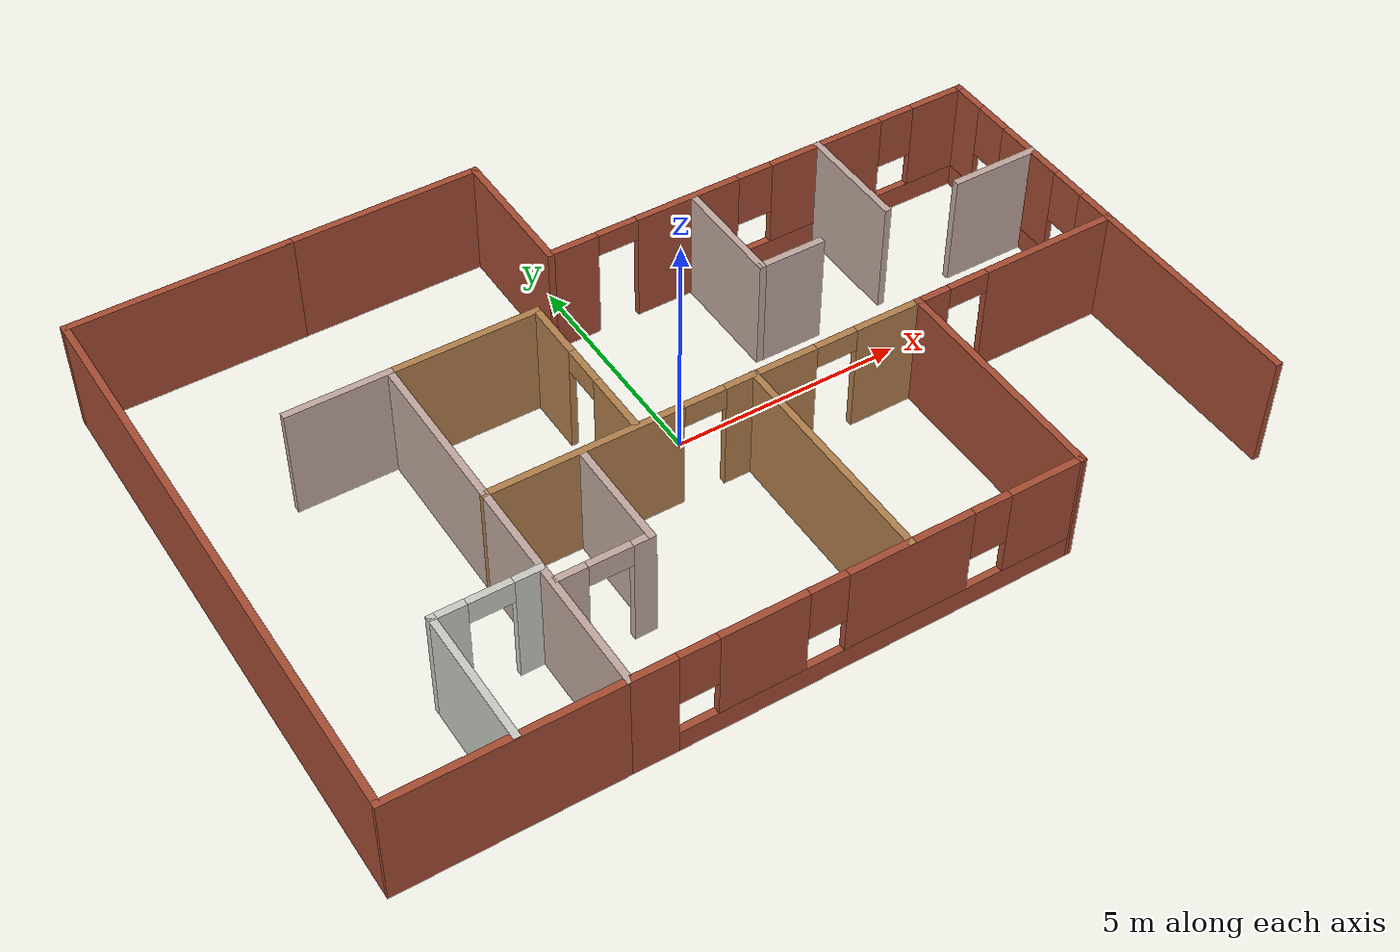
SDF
<?xml version='1.0'?>
<sdf version='1.7'>
  <model name='Building'>
    <pose>-0.132573 0.267464 0 0 -0 0</pose>
    <link name='Wall_12'>
      <collision name='Wall_12_Collision'>
        <geometry>
          <box>
            <size>4.26766 0.15 2.5</size>
          </box>
        </geometry>
        <pose>0 0 1.25 0 -0 0</pose>
      </collision>
      <visual name='Wall_12_Visual'>
        <pose>0 0 1.25 0 -0 0</pose>
        <geometry>
          <box>
            <size>4.26766 0.15 2.5</size>
          </box>
        </geometry>
        <material>
          <script>
            <uri>file://media/materials/scripts/gazebo.material</uri>
            <name>Gazebo/Bricks</name>
          </script>
          <ambient>1 1 1 1</ambient>
        </material>
        <meta>
          <layer>0</layer>
        </meta>
      </visual>
      <pose>-2.62625 6.34999 0 0 -0 3.14135</pose>
    </link>
    <link name='Wall_18'>
      <collision name='Wall_18_Collision'>
        <geometry>
          <box>
            <size>2.54909 0.15 2.5</size>
          </box>
        </geometry>
        <pose>0 0 1.25 0 -0 0</pose>
      </collision>
      <visual name='Wall_18_Visual'>
        <pose>0 0 1.25 0 -0 0</pose>
        <geometry>
          <box>
            <size>2.54909 0.15 2.5</size>
          </box>
        </geometry>
        <material>
          <script>
            <uri>file://media/materials/scripts/gazebo.material</uri>
            <name>Gazebo/Grey</name>
          </script>
          <ambient>0.760784 0.662745 0.627451 1</ambient>
        </material>
        <meta>
          <layer>0</layer>
        </meta>
      </visual>
      <pose>2.71291 2.11749 0 0 -0 -1.5708</pose>
    </link>
    <link name='Wall_19'>
      <collision name='Wall_19_Collision'>
        <geometry>
          <box>
            <size>1.5 0.15 2.5</size>
          </box>
        </geometry>
        <pose>0 0 1.25 0 -0 0</pose>
      </collision>
      <visual name='Wall_19_Visual'>
        <pose>0 0 1.25 0 -0 0</pose>
        <geometry>
          <box>
            <size>1.5 0.15 2.5</size>
          </box>
        </geometry>
        <material>
          <script>
            <uri>file://media/materials/scripts/gazebo.material</uri>
            <name>Gazebo/Grey</name>
          </script>
          <ambient>0.760784 0.662745 0.627451 1</ambient>
        </material>
        <meta>
          <layer>0</layer>
        </meta>
      </visual>
      <pose>3.39609 0.91795 0 0 -0 0</pose>
    </link>
    <link name='Wall_22'>
      <collision name='Wall_22_Collision'>
        <geometry>
          <box>
            <size>2 0.15 2.5</size>
          </box>
        </geometry>
        <pose>0 0 1.25 0 -0 0</pose>
      </collision>
      <visual name='Wall_22_Visual'>
        <pose>0 0 1.25 0 -0 0</pose>
        <geometry>
          <box>
            <size>2 0.15 2.5</size>
          </box>
        </geometry>
        <material>
          <script>
            <uri>file://media/materials/scripts/gazebo.material</uri>
            <name>Gazebo/Grey</name>
          </script>
          <ambient>0.760784 0.662745 0.627451 1</ambient>
        </material>
        <meta>
          <layer>0</layer>
        </meta>
      </visual>
      <pose>8.36008 0.923269 0 0 -0 3.14159</pose>
    </link>
    <link name='Wall_24'>
      <collision name='Wall_24_Collision'>
        <geometry>
          <box>
            <size>2.5 0.15 2.5</size>
          </box>
        </geometry>
        <pose>0 0 1.25 0 -0 0</pose>
      </collision>
      <visual name='Wall_24_Visual'>
        <pose>0 0 1.25 0 -0 0</pose>
        <geometry>
          <box>
            <size>2.5 0.15 2.5</size>
          </box>
        </geometry>
        <material>
          <script>
            <uri>file://media/materials/scripts/gazebo.material</uri>
            <name>Gazebo/Grey</name>
          </script>
          <ambient>0.760784 0.662745 0.627451 1</ambient>
        </material>
        <meta>
          <layer>0</layer>
        </meta>
      </visual>
      <pose>5.7297 2.18472 0 0 -0 -1.5708</pose>
    </link>
    <link name='Wall_26'>
      <collision name='Wall_26_Collision'>
        <geometry>
          <box>
            <size>3.13696 0.15 2.5</size>
          </box>
        </geometry>
        <pose>0 0 1.25 0 -0 0</pose>
      </collision>
      <visual name='Wall_26_Visual'>
        <pose>0 0 1.25 0 -0 0</pose>
        <geometry>
          <box>
            <size>3.13696 0.15 2.5</size>
          </box>
        </geometry>
        <material>
          <script>
            <uri>file://media/materials/scripts/gazebo.material</uri>
            <name>Gazebo/Bricks</name>
          </script>
          <ambient>1 1 1 1</ambient>
        </material>
        <meta>
          <layer>0</layer>
        </meta>
      </visual>
      <pose>-0.567427 4.85601 0 0 -0 -1.5708</pose>
    </link>
    <link name='Wall_28'>
      <collision name='Wall_28_Collision'>
        <geometry>
          <box>
            <size>3.25 0.15 2.5</size>
          </box>
        </geometry>
        <pose>0 0 1.25 0 -0 0</pose>
      </collision>
      <visual name='Wall_28_Visual'>
        <pose>0 0 1.25 0 -0 0</pose>
        <geometry>
          <box>
            <size>3.25 0.15 2.5</size>
          </box>
        </geometry>
        <material>
          <script>
            <uri>file://media/materials/scripts/gazebo.material</uri>
            <name>Gazebo/Wood</name>
          </script>
          <ambient>1 1 1 1</ambient>
        </material>
        <meta>
          <layer>0</layer>
        </meta>
      </visual>
      <pose>-3.11962 2.09882 0 0 -0 0</pose>
    </link>
    <link name='Wall_29'>
      <pose>-1.56764 0.350671 0 0 -0 -1.56967</pose>
      <visual name='Wall_29_Visual_0'>
        <pose>-1.13949 0 1.25 0 -0 0</pose>
        <geometry>
          <box>
            <size>1.37522 0.15 2.5</size>
          </box>
        </geometry>
        <material>
          <script>
            <uri>file://media/materials/scripts/gazebo.material</uri>
            <name>Gazebo/Wood</name>
          </script>
          <ambient>1 1 1 1</ambient>
        </material>
        <meta>
          <layer>0</layer>
        </meta>
      </visual>
      <collision name='Wall_29_Collision_0'>
        <geometry>
          <box>
            <size>1.37522 0.15 2.5</size>
          </box>
        </geometry>
        <pose>-1.13949 0 1.25 0 -0 0</pose>
      </collision>
      <visual name='Wall_29_Visual_1'>
        <pose>1.13761 0 1.25 0 -0 0</pose>
        <geometry>
          <box>
            <size>1.37899 0.15 2.5</size>
          </box>
        </geometry>
        <material>
          <script>
            <uri>file://media/materials/scripts/gazebo.material</uri>
            <name>Gazebo/Wood</name>
          </script>
          <ambient>1 1 1 1</ambient>
        </material>
        <meta>
          <layer>0</layer>
        </meta>
      </visual>
      <collision name='Wall_29_Collision_1'>
        <geometry>
          <box>
            <size>1.37899 0.15 2.5</size>
          </box>
        </geometry>
        <pose>1.13761 0 1.25 0 -0 0</pose>
      </collision>
      <visual name='Wall_29_Visual_2'>
        <pose>-0.001883 0 2.25 0 -0 0</pose>
        <geometry>
          <box>
            <size>0.9 0.15 0.5</size>
          </box>
        </geometry>
        <material>
          <script>
            <uri>file://media/materials/scripts/gazebo.material</uri>
            <name>Gazebo/Wood</name>
          </script>
          <ambient>1 1 1 1</ambient>
        </material>
        <meta>
          <layer>0</layer>
        </meta>
      </visual>
      <collision name='Wall_29_Collision_2'>
        <geometry>
          <box>
            <size>0.9 0.15 0.5</size>
          </box>
        </geometry>
        <pose>-0.001883 0 2.25 0 -0 0</pose>
      </collision>
    </link>
    <link name='Wall_3'>
      <pose>9.28257 0.931014 0 0 -0 1.5708</pose>
      <visual name='Wall_3_Visual_0'>
        <pose>-2.06336 0 1.25 0 -0 0</pose>
        <geometry>
          <box>
            <size>0.886317 0.15 2.5</size>
          </box>
        </geometry>
        <material>
          <script>
            <uri>file://media/materials/scripts/gazebo.material</uri>
            <name>Gazebo/Bricks</name>
          </script>
          <ambient>1 1 1 1</ambient>
        </material>
        <meta>
          <layer>0</layer>
        </meta>
      </visual>
      <collision name='Wall_3_Collision_0'>
        <geometry>
          <box>
            <size>0.886317 0.15 2.5</size>
          </box>
        </geometry>
        <pose>-2.06336 0 1.25 0 -0 0</pose>
      </collision>
      <visual name='Wall_3_Visual_1'>
        <pose>0.443159 0 0.25 0 -0 0</pose>
        <geometry>
          <box>
            <size>4.12673 0.15 0.5</size>
          </box>
        </geometry>
        <material>
          <script>
            <uri>file://media/materials/scripts/gazebo.material</uri>
            <name>Gazebo/Bricks</name>
          </script>
          <ambient>1 1 1 1</ambient>
        </material>
        <meta>
          <layer>0</layer>
        </meta>
      </visual>
      <collision name='Wall_3_Collision_1'>
        <geometry>
          <box>
            <size>4.12673 0.15 0.5</size>
          </box>
        </geometry>
        <pose>0.443159 0 0.25 0 -0 0</pose>
      </collision>
      <visual name='Wall_3_Visual_2'>
        <pose>0.013724 0 1.5 0 -0 0</pose>
        <geometry>
          <box>
            <size>1.66786 0.15 2</size>
          </box>
        </geometry>
        <material>
          <script>
            <uri>file://media/materials/scripts/gazebo.material</uri>
            <name>Gazebo/Bricks</name>
          </script>
          <ambient>1 1 1 1</ambient>
        </material>
        <meta>
          <layer>0</layer>
        </meta>
      </visual>
      <collision name='Wall_3_Collision_2'>
        <geometry>
          <box>
            <size>1.66786 0.15 2</size>
          </box>
        </geometry>
        <pose>0.013724 0 1.5 0 -0 0</pose>
      </collision>
      <visual name='Wall_3_Visual_3'>
        <pose>2.07709 0 1.5 0 -0 0</pose>
        <geometry>
          <box>
            <size>0.858869 0.15 2</size>
          </box>
        </geometry>
        <material>
          <script>
            <uri>file://media/materials/scripts/gazebo.material</uri>
            <name>Gazebo/Bricks</name>
          </script>
          <ambient>1 1 1 1</ambient>
        </material>
        <meta>
          <layer>0</layer>
        </meta>
      </visual>
      <collision name='Wall_3_Collision_3'>
        <geometry>
          <box>
            <size>0.858869 0.15 2</size>
          </box>
        </geometry>
        <pose>2.07709 0 1.5 0 -0 0</pose>
      </collision>
      <visual name='Wall_3_Visual_4'>
        <pose>-1.2202 0 1.9 0 -0 0</pose>
        <geometry>
          <box>
            <size>0.8 0.15 1.2</size>
          </box>
        </geometry>
        <material>
          <script>
            <uri>file://media/materials/scripts/gazebo.material</uri>
            <name>Gazebo/Bricks</name>
          </script>
          <ambient>1 1 1 1</ambient>
        </material>
        <meta>
          <layer>0</layer>
        </meta>
      </visual>
      <collision name='Wall_3_Collision_4'>
        <geometry>
          <box>
            <size>0.8 0.15 1.2</size>
          </box>
        </geometry>
        <pose>-1.2202 0 1.9 0 -0 0</pose>
      </collision>
      <visual name='Wall_3_Visual_5'>
        <pose>1.24765 0 1.9 0 -0 0</pose>
        <geometry>
          <box>
            <size>0.8 0.15 1.2</size>
          </box>
        </geometry>
        <material>
          <script>
            <uri>file://media/materials/scripts/gazebo.material</uri>
            <name>Gazebo/Bricks</name>
          </script>
          <ambient>1 1 1 1</ambient>
        </material>
        <meta>
          <layer>0</layer>
        </meta>
      </visual>
      <collision name='Wall_3_Collision_5'>
        <geometry>
          <box>
            <size>0.8 0.15 1.2</size>
          </box>
        </geometry>
        <pose>1.24765 0 1.9 0 -0 0</pose>
      </collision>
    </link>
    <link name='Wall_31'>
      <collision name='Wall_31_Collision'>
        <geometry>
          <box>
            <size>5 0.15 2.5</size>
          </box>
        </geometry>
        <pose>0 0 1.25 0 -0 0</pose>
      </collision>
      <visual name='Wall_31_Visual'>
        <pose>0 0 1.25 0 -0 0</pose>
        <geometry>
          <box>
            <size>5 0.15 2.5</size>
          </box>
        </geometry>
        <material>
          <script>
            <uri>file://media/materials/scripts/gazebo.material</uri>
            <name>Gazebo/Grey</name>
          </script>
          <ambient>0.760784 0.662745 0.627451 1</ambient>
        </material>
        <meta>
          <layer>0</layer>
        </meta>
      </visual>
      <pose>-4.68508 -3.9245 0 0 -0 -1.5708</pose>
    </link>
    <link name='Wall_34'>
      <collision name='Wall_34_Collision'>
        <geometry>
          <box>
            <size>5 0.15 2.5</size>
          </box>
        </geometry>
        <pose>0 0 1.25 0 -0 0</pose>
      </collision>
      <visual name='Wall_34_Visual'>
        <pose>0 0 1.25 0 -0 0</pose>
        <geometry>
          <box>
            <size>5 0.15 2.5</size>
          </box>
        </geometry>
        <material>
          <script>
            <uri>file://media/materials/scripts/gazebo.material</uri>
            <name>Gazebo/Bricks</name>
          </script>
          <ambient>1 1 1 1</ambient>
        </material>
        <meta>
          <layer>0</layer>
        </meta>
      </visual>
      <pose>9.28257 -3.92551 0 0 -0 -1.5708</pose>
    </link>
    <link name='Wall_36'>
      <pose>-0.001254 -6.35001 0 0 -0 -0.000107</pose>
      <visual name='Wall_36_Visual_0'>
        <pose>-4.25927 0 1.25 0 -0 0</pose>
        <geometry>
          <box>
            <size>0.999123 0.15 2.5</size>
          </box>
        </geometry>
        <material>
          <script>
            <uri>file://media/materials/scripts/gazebo.material</uri>
            <name>Gazebo/Bricks</name>
          </script>
          <ambient>1 1 1 1</ambient>
        </material>
        <meta>
          <layer>0</layer>
        </meta>
      </visual>
      <collision name='Wall_36_Collision_0'>
        <geometry>
          <box>
            <size>0.999123 0.15 2.5</size>
          </box>
        </geometry>
        <pose>-4.25927 0 1.25 0 -0 0</pose>
      </collision>
      <visual name='Wall_36_Visual_1'>
        <pose>0.499561 0 0.25 0 -0 0</pose>
        <geometry>
          <box>
            <size>8.51853 0.15 0.5</size>
          </box>
        </geometry>
        <material>
          <script>
            <uri>file://media/materials/scripts/gazebo.material</uri>
            <name>Gazebo/Bricks</name>
          </script>
          <ambient>1 1 1 1</ambient>
        </material>
        <meta>
          <layer>0</layer>
        </meta>
      </visual>
      <collision name='Wall_36_Collision_1'>
        <geometry>
          <box>
            <size>8.51853 0.15 0.5</size>
          </box>
        </geometry>
        <pose>0.499561 0 0.25 0 -0 0</pose>
      </collision>
      <visual name='Wall_36_Visual_2'>
        <pose>-2.05731 0 1.5 0 -0 0</pose>
        <geometry>
          <box>
            <size>1.80478 0.15 2</size>
          </box>
        </geometry>
        <material>
          <script>
            <uri>file://media/materials/scripts/gazebo.material</uri>
            <name>Gazebo/Bricks</name>
          </script>
          <ambient>1 1 1 1</ambient>
        </material>
        <meta>
          <layer>0</layer>
        </meta>
      </visual>
      <collision name='Wall_36_Collision_2'>
        <geometry>
          <box>
            <size>1.80478 0.15 2</size>
          </box>
        </geometry>
        <pose>-2.05731 0 1.5 0 -0 0</pose>
      </collision>
      <visual name='Wall_36_Visual_3'>
        <pose>0.968834 0 1.5 0 -0 0</pose>
        <geometry>
          <box>
            <size>2.64751 0.15 2</size>
          </box>
        </geometry>
        <material>
          <script>
            <uri>file://media/materials/scripts/gazebo.material</uri>
            <name>Gazebo/Bricks</name>
          </script>
          <ambient>1 1 1 1</ambient>
        </material>
        <meta>
          <layer>0</layer>
        </meta>
      </visual>
      <collision name='Wall_36_Collision_3'>
        <geometry>
          <box>
            <size>2.64751 0.15 2</size>
          </box>
        </geometry>
        <pose>0.968834 0 1.5 0 -0 0</pose>
      </collision>
      <visual name='Wall_36_Visual_4'>
        <pose>3.92571 0 1.5 0 -0 0</pose>
        <geometry>
          <box>
            <size>1.66624 0.15 2</size>
          </box>
        </geometry>
        <material>
          <script>
            <uri>file://media/materials/scripts/gazebo.material</uri>
            <name>Gazebo/Bricks</name>
          </script>
          <ambient>1 1 1 1</ambient>
        </material>
        <meta>
          <layer>0</layer>
        </meta>
      </visual>
      <collision name='Wall_36_Collision_4'>
        <geometry>
          <box>
            <size>1.66624 0.15 2</size>
          </box>
        </geometry>
        <pose>3.92571 0 1.5 0 -0 0</pose>
      </collision>
      <visual name='Wall_36_Visual_5'>
        <pose>-3.3597 0 1.9 0 -0 0</pose>
        <geometry>
          <box>
            <size>0.8 0.15 1.2</size>
          </box>
        </geometry>
        <material>
          <script>
            <uri>file://media/materials/scripts/gazebo.material</uri>
            <name>Gazebo/Bricks</name>
          </script>
          <ambient>1 1 1 1</ambient>
        </material>
        <meta>
          <layer>0</layer>
        </meta>
      </visual>
      <collision name='Wall_36_Collision_5'>
        <geometry>
          <box>
            <size>0.8 0.15 1.2</size>
          </box>
        </geometry>
        <pose>-3.3597 0 1.9 0 -0 0</pose>
      </collision>
      <visual name='Wall_36_Visual_6'>
        <pose>-0.75492 0 1.9 0 -0 0</pose>
        <geometry>
          <box>
            <size>0.8 0.15 1.2</size>
          </box>
        </geometry>
        <material>
          <script>
            <uri>file://media/materials/scripts/gazebo.material</uri>
            <name>Gazebo/Bricks</name>
          </script>
          <ambient>1 1 1 1</ambient>
        </material>
        <meta>
          <layer>0</layer>
        </meta>
      </visual>
      <collision name='Wall_36_Collision_6'>
        <geometry>
          <box>
            <size>0.8 0.15 1.2</size>
          </box>
        </geometry>
        <pose>-0.75492 0 1.9 0 -0 0</pose>
      </collision>
      <visual name='Wall_36_Visual_7'>
        <pose>2.69259 0 1.9 0 -0 0</pose>
        <geometry>
          <box>
            <size>0.8 0.15 1.2</size>
          </box>
        </geometry>
        <material>
          <script>
            <uri>file://media/materials/scripts/gazebo.material</uri>
            <name>Gazebo/Bricks</name>
          </script>
          <ambient>1 1 1 1</ambient>
        </material>
        <meta>
          <layer>0</layer>
        </meta>
      </visual>
      <collision name='Wall_36_Collision_7'>
        <geometry>
          <box>
            <size>0.8 0.15 1.2</size>
          </box>
        </geometry>
        <pose>2.69259 0 1.9 0 -0 0</pose>
      </collision>
    </link>
    <link name='Wall_37'>
      <collision name='Wall_37_Collision'>
        <geometry>
          <box>
            <size>5 0.15 2.5</size>
          </box>
        </geometry>
        <pose>0 0 1.25 0 -0 0</pose>
      </collision>
      <visual name='Wall_37_Visual'>
        <pose>0 0 1.25 0 -0 0</pose>
        <geometry>
          <box>
            <size>5 0.15 2.5</size>
          </box>
        </geometry>
        <material>
          <script>
            <uri>file://media/materials/scripts/gazebo.material</uri>
            <name>Gazebo/Bricks</name>
          </script>
          <ambient>1 1 1 1</ambient>
        </material>
        <meta>
          <layer>0</layer>
        </meta>
      </visual>
      <pose>4.68257 -3.92551 0 0 -0 1.5708</pose>
    </link>
    <link name='Wall_39'>
      <collision name='Wall_39_Collision'>
        <geometry>
          <box>
            <size>5 0.15 2.5</size>
          </box>
        </geometry>
        <pose>0 0 1.25 0 -0 0</pose>
      </collision>
      <visual name='Wall_39_Visual'>
        <pose>0 0 1.25 0 -0 0</pose>
        <geometry>
          <box>
            <size>5 0.15 2.5</size>
          </box>
        </geometry>
        <material>
          <script>
            <uri>file://media/materials/scripts/gazebo.material</uri>
            <name>Gazebo/Wood</name>
          </script>
          <ambient>1 1 1 1</ambient>
        </material>
        <meta>
          <layer>0</layer>
        </meta>
      </visual>
      <pose>0.958073 -3.91802 0 0 -0 -1.5708</pose>
    </link>
    <link name='Wall_41'>
      <collision name='Wall_41_Collision'>
        <geometry>
          <box>
            <size>4.75 0.15 2.5</size>
          </box>
        </geometry>
        <pose>0 0 1.25 0 -0 0</pose>
      </collision>
      <visual name='Wall_41_Visual'>
        <pose>0 0 1.25 0 -0 0</pose>
        <geometry>
          <box>
            <size>4.75 0.15 2.5</size>
          </box>
        </geometry>
        <material>
          <script>
            <uri>file://media/materials/scripts/gazebo.material</uri>
            <name>Gazebo/Bricks</name>
          </script>
          <ambient>1 1 1 1</ambient>
        </material>
        <meta>
          <layer>0</layer>
        </meta>
      </visual>
      <pose>-6.98508 6.34587 0 0 -0 3.14159</pose>
    </link>
    <link name='Wall_42'>
      <collision name='Wall_42_Collision'>
        <geometry>
          <box>
            <size>12.75 0.15 2.5</size>
          </box>
        </geometry>
        <pose>0 0 1.25 0 -0 0</pose>
      </collision>
      <visual name='Wall_42_Visual'>
        <pose>0 0 1.25 0 -0 0</pose>
        <geometry>
          <box>
            <size>12.75 0.15 2.5</size>
          </box>
        </geometry>
        <material>
          <script>
            <uri>file://media/materials/scripts/gazebo.material</uri>
            <name>Gazebo/Bricks</name>
          </script>
          <ambient>1 1 1 1</ambient>
        </material>
        <meta>
          <layer>0</layer>
        </meta>
      </visual>
      <pose>-9.28508 0.045872 0 0 -0 -1.5708</pose>
    </link>
    <link name='Wall_44'>
      <collision name='Wall_44_Collision'>
        <geometry>
          <box>
            <size>4.75 0.15 2.5</size>
          </box>
        </geometry>
        <pose>0 0 1.25 0 -0 0</pose>
      </collision>
      <visual name='Wall_44_Visual'>
        <pose>0 0 1.25 0 -0 0</pose>
        <geometry>
          <box>
            <size>4.75 0.15 2.5</size>
          </box>
        </geometry>
        <material>
          <script>
            <uri>file://media/materials/scripts/gazebo.material</uri>
            <name>Gazebo/Bricks</name>
          </script>
          <ambient>1 1 1 1</ambient>
        </material>
        <meta>
          <layer>0</layer>
        </meta>
      </visual>
      <pose>-6.98508 -6.3495 0 0 -0 3.14159</pose>
    </link>
    <link name='Wall_47'>
      <collision name='Wall_47_Collision'>
        <geometry>
          <box>
            <size>3.75 0.15 2.5</size>
          </box>
        </geometry>
        <pose>0 0 1.25 0 -0 0</pose>
      </collision>
      <visual name='Wall_47_Visual'>
        <pose>0 0 1.25 0 -0 0</pose>
        <geometry>
          <box>
            <size>3.75 0.15 2.5</size>
          </box>
        </geometry>
        <material>
          <script>
            <uri>file://media/materials/scripts/gazebo.material</uri>
            <name>Gazebo/Grey</name>
          </script>
          <ambient>0.760784 0.662745 0.627451 1</ambient>
        </material>
        <meta>
          <layer>0</layer>
        </meta>
      </visual>
      <pose>-4.68508 0.300498 0 0 -0 1.5708</pose>
    </link>
    <link name='Wall_5'>
      <pose>4.35757 3.36254 0 0 -0 0</pose>
      <visual name='Wall_5_Visual_0'>
        <pose>-4.43313 0 1.25 0 -0 0</pose>
        <geometry>
          <box>
            <size>1.13374 0.15 2.5</size>
          </box>
        </geometry>
        <material>
          <script>
            <uri>file://media/materials/scripts/gazebo.material</uri>
            <name>Gazebo/Bricks</name>
          </script>
          <ambient>1 1 1 1</ambient>
        </material>
        <meta>
          <layer>0</layer>
        </meta>
      </visual>
      <collision name='Wall_5_Collision_0'>
        <geometry>
          <box>
            <size>1.13374 0.15 2.5</size>
          </box>
        </geometry>
        <pose>-4.43313 0 1.25 0 -0 0</pose>
      </collision>
      <visual name='Wall_5_Visual_1'>
        <pose>-1.77928 0 1.25 0 -0 0</pose>
        <geometry>
          <box>
            <size>2.37396 0.15 2.5</size>
          </box>
        </geometry>
        <material>
          <script>
            <uri>file://media/materials/scripts/gazebo.material</uri>
            <name>Gazebo/Bricks</name>
          </script>
          <ambient>1 1 1 1</ambient>
        </material>
        <meta>
          <layer>0</layer>
        </meta>
      </visual>
      <collision name='Wall_5_Collision_1'>
        <geometry>
          <box>
            <size>2.37396 0.15 2.5</size>
          </box>
        </geometry>
        <pose>-1.77928 0 1.25 0 -0 0</pose>
      </collision>
      <visual name='Wall_5_Visual_2'>
        <pose>2.20385 0 0.25 0 -0 0</pose>
        <geometry>
          <box>
            <size>5.5923 0.15 0.5</size>
          </box>
        </geometry>
        <material>
          <script>
            <uri>file://media/materials/scripts/gazebo.material</uri>
            <name>Gazebo/Bricks</name>
          </script>
          <ambient>1 1 1 1</ambient>
        </material>
        <meta>
          <layer>0</layer>
        </meta>
      </visual>
      <collision name='Wall_5_Collision_2'>
        <geometry>
          <box>
            <size>5.5923 0.15 0.5</size>
          </box>
        </geometry>
        <pose>2.20385 0 0.25 0 -0 0</pose>
      </collision>
      <visual name='Wall_5_Visual_3'>
        <pose>1.54973 0 1.5 0 -0 0</pose>
        <geometry>
          <box>
            <size>2.68406 0.15 2</size>
          </box>
        </geometry>
        <material>
          <script>
            <uri>file://media/materials/scripts/gazebo.material</uri>
            <name>Gazebo/Bricks</name>
          </script>
          <ambient>1 1 1 1</ambient>
        </material>
        <meta>
          <layer>0</layer>
        </meta>
      </visual>
      <collision name='Wall_5_Collision_3'>
        <geometry>
          <box>
            <size>2.68406 0.15 2</size>
          </box>
        </geometry>
        <pose>1.54973 0 1.5 0 -0 0</pose>
      </collision>
      <visual name='Wall_5_Visual_4'>
        <pose>4.34588 0 1.5 0 -0 0</pose>
        <geometry>
          <box>
            <size>1.30824 0.15 2</size>
          </box>
        </geometry>
        <material>
          <script>
            <uri>file://media/materials/scripts/gazebo.material</uri>
            <name>Gazebo/Bricks</name>
          </script>
          <ambient>1 1 1 1</ambient>
        </material>
        <meta>
          <layer>0</layer>
        </meta>
      </visual>
      <collision name='Wall_5_Collision_4'>
        <geometry>
          <box>
            <size>1.30824 0.15 2</size>
          </box>
        </geometry>
        <pose>4.34588 0 1.5 0 -0 0</pose>
      </collision>
      <visual name='Wall_5_Visual_5'>
        <pose>-0.1923 0 1.9 0 -0 0</pose>
        <geometry>
          <box>
            <size>0.8 0.15 1.2</size>
          </box>
        </geometry>
        <material>
          <script>
            <uri>file://media/materials/scripts/gazebo.material</uri>
            <name>Gazebo/Bricks</name>
          </script>
          <ambient>1 1 1 1</ambient>
        </material>
        <meta>
          <layer>0</layer>
        </meta>
      </visual>
      <collision name='Wall_5_Collision_5'>
        <geometry>
          <box>
            <size>0.8 0.15 1.2</size>
          </box>
        </geometry>
        <pose>-0.1923 0 1.9 0 -0 0</pose>
      </collision>
      <visual name='Wall_5_Visual_6'>
        <pose>3.29176 0 1.9 0 -0 0</pose>
        <geometry>
          <box>
            <size>0.8 0.15 1.2</size>
          </box>
        </geometry>
        <material>
          <script>
            <uri>file://media/materials/scripts/gazebo.material</uri>
            <name>Gazebo/Bricks</name>
          </script>
          <ambient>1 1 1 1</ambient>
        </material>
        <meta>
          <layer>0</layer>
        </meta>
      </visual>
      <collision name='Wall_5_Collision_6'>
        <geometry>
          <box>
            <size>0.8 0.15 1.2</size>
          </box>
        </geometry>
        <pose>3.29176 0 1.9 0 -0 0</pose>
      </collision>
      <visual name='Wall_5_Visual_7'>
        <pose>-3.41626 0 2.25 0 -0 0</pose>
        <geometry>
          <box>
            <size>0.9 0.15 0.5</size>
          </box>
        </geometry>
        <material>
          <script>
            <uri>file://media/materials/scripts/gazebo.material</uri>
            <name>Gazebo/Bricks</name>
          </script>
          <ambient>1 1 1 1</ambient>
        </material>
        <meta>
          <layer>0</layer>
        </meta>
      </visual>
      <collision name='Wall_5_Collision_7'>
        <geometry>
          <box>
            <size>0.9 0.15 0.5</size>
          </box>
        </geometry>
        <pose>-3.41626 0 2.25 0 -0 0</pose>
      </collision>
    </link>
    <link name='Wall_51'>
      <pose>-5.74884 -3.48761 0 0 -0 3.14159</pose>
      <visual name='Wall_51_Visual_0'>
        <pose>-0.814565 0 1.25 0 -0 0</pose>
        <geometry>
          <box>
            <size>0.62087 0.15 2.5</size>
          </box>
        </geometry>
        <material>
          <script>
            <uri>file://media/materials/scripts/gazebo.material</uri>
            <name>Gazebo/CeilingTiled</name>
          </script>
          <ambient>0.760784 0.662745 0.627451 1</ambient>
        </material>
        <meta>
          <layer>0</layer>
        </meta>
      </visual>
      <collision name='Wall_51_Collision_0'>
        <geometry>
          <box>
            <size>0.62087 0.15 2.5</size>
          </box>
        </geometry>
        <pose>-0.814565 0 1.25 0 -0 0</pose>
      </collision>
      <visual name='Wall_51_Visual_1'>
        <pose>0.760435 0 1.25 0 -0 0</pose>
        <geometry>
          <box>
            <size>0.72913 0.15 2.5</size>
          </box>
        </geometry>
        <material>
          <script>
            <uri>file://media/materials/scripts/gazebo.material</uri>
            <name>Gazebo/CeilingTiled</name>
          </script>
          <ambient>0.760784 0.662745 0.627451 1</ambient>
        </material>
        <meta>
          <layer>0</layer>
        </meta>
      </visual>
      <collision name='Wall_51_Collision_1'>
        <geometry>
          <box>
            <size>0.72913 0.15 2.5</size>
          </box>
        </geometry>
        <pose>0.760435 0 1.25 0 -0 0</pose>
      </collision>
      <visual name='Wall_51_Visual_2'>
        <pose>-0.05413 0 2.25 0 -0 0</pose>
        <geometry>
          <box>
            <size>0.9 0.15 0.5</size>
          </box>
        </geometry>
        <material>
          <script>
            <uri>file://media/materials/scripts/gazebo.material</uri>
            <name>Gazebo/CeilingTiled</name>
          </script>
          <ambient>0.760784 0.662745 0.627451 1</ambient>
        </material>
        <meta>
          <layer>0</layer>
        </meta>
      </visual>
      <collision name='Wall_51_Collision_2'>
        <geometry>
          <box>
            <size>0.9 0.15 0.5</size>
          </box>
        </geometry>
        <pose>-0.05413 0 2.25 0 -0 0</pose>
      </collision>
    </link>
    <link name='Wall_52'>
      <collision name='Wall_52_Collision'>
        <geometry>
          <box>
            <size>3 0.15 2.5</size>
          </box>
        </geometry>
        <pose>0 0 1.25 0 -0 0</pose>
      </collision>
      <visual name='Wall_52_Visual'>
        <pose>0 0 1.25 0 -0 0</pose>
        <geometry>
          <box>
            <size>3 0.15 2.5</size>
          </box>
        </geometry>
        <material>
          <script>
            <uri>file://media/materials/scripts/gazebo.material</uri>
            <name>Gazebo/CeilingTiled</name>
          </script>
          <ambient>0.760784 0.662745 0.627451 1</ambient>
        </material>
        <meta>
          <layer>0</layer>
        </meta>
      </visual>
      <pose>-6.79884 -4.91261 0 0 -0 -1.5708</pose>
    </link>
    <link name='Wall_54'>
      <collision name='Wall_54_Collision'>
        <geometry>
          <box>
            <size>2.5 0.15 2.5</size>
          </box>
        </geometry>
        <pose>0 0 1.25 0 -0 0</pose>
      </collision>
      <visual name='Wall_54_Visual'>
        <pose>0 0 1.25 0 -0 0</pose>
        <geometry>
          <box>
            <size>2.5 0.15 2.5</size>
          </box>
        </geometry>
        <material>
          <script>
            <uri>file://media/materials/scripts/gazebo.material</uri>
            <name>Gazebo/Grey</name>
          </script>
          <ambient>0.760784 0.662745 0.627451 1</ambient>
        </material>
        <meta>
          <layer>0</layer>
        </meta>
      </visual>
      <pose>-2.72782 -2.67582 0 0 -0 -1.5708</pose>
    </link>
    <link name='Wall_55'>
      <pose>-3.65282 -3.85082 0 0 -0 3.14159</pose>
      <visual name='Wall_55_Visual_0'>
        <pose>-0.769257 0 1.25 0 -0 0</pose>
        <geometry>
          <box>
            <size>0.461487 0.15 2.5</size>
          </box>
        </geometry>
        <material>
          <script>
            <uri>file://media/materials/scripts/gazebo.material</uri>
            <name>Gazebo/Grey</name>
          </script>
          <ambient>0.760784 0.662745 0.627451 1</ambient>
        </material>
        <meta>
          <layer>0</layer>
        </meta>
      </visual>
      <collision name='Wall_55_Collision_0'>
        <geometry>
          <box>
            <size>0.461487 0.15 2.5</size>
          </box>
        </geometry>
        <pose>-0.769257 0 1.25 0 -0 0</pose>
      </collision>
      <visual name='Wall_55_Visual_1'>
        <pose>0.680743 0 1.25 0 -0 0</pose>
        <geometry>
          <box>
            <size>0.638513 0.15 2.5</size>
          </box>
        </geometry>
        <material>
          <script>
            <uri>file://media/materials/scripts/gazebo.material</uri>
            <name>Gazebo/Grey</name>
          </script>
          <ambient>0.760784 0.662745 0.627451 1</ambient>
        </material>
        <meta>
          <layer>0</layer>
        </meta>
      </visual>
      <collision name='Wall_55_Collision_1'>
        <geometry>
          <box>
            <size>0.638513 0.15 2.5</size>
          </box>
        </geometry>
        <pose>0.680743 0 1.25 0 -0 0</pose>
      </collision>
      <visual name='Wall_55_Visual_2'>
        <pose>-0.088513 0 2.25 0 -0 0</pose>
        <geometry>
          <box>
            <size>0.9 0.15 0.5</size>
          </box>
        </geometry>
        <material>
          <script>
            <uri>file://media/materials/scripts/gazebo.material</uri>
            <name>Gazebo/Grey</name>
          </script>
          <ambient>0.760784 0.662745 0.627451 1</ambient>
        </material>
        <meta>
          <layer>0</layer>
        </meta>
      </visual>
      <collision name='Wall_55_Collision_2'>
        <geometry>
          <box>
            <size>0.9 0.15 0.5</size>
          </box>
        </geometry>
        <pose>-0.088513 0 2.25 0 -0 0</pose>
      </collision>
    </link>
    <link name='Wall_57'>
      <pose>-0.001254 -1.50001 0 0 -0 3.14148</pose>
      <visual name='Wall_57_Visual_0'>
        <pose>-3.98961 0 1.25 0 -0 0</pose>
        <geometry>
          <box>
            <size>1.53844 0.15 2.5</size>
          </box>
        </geometry>
        <material>
          <script>
            <uri>file://media/materials/scripts/gazebo.material</uri>
            <name>Gazebo/Wood</name>
          </script>
          <ambient>1 1 1 1</ambient>
        </material>
        <meta>
          <layer>0</layer>
        </meta>
      </visual>
      <collision name='Wall_57_Collision_0'>
        <geometry>
          <box>
            <size>1.53844 0.15 2.5</size>
          </box>
        </geometry>
        <pose>-3.98961 0 1.25 0 -0 0</pose>
      </collision>
      <visual name='Wall_57_Visual_1'>
        <pose>-1.31362 0 1.25 0 -0 0</pose>
        <geometry>
          <box>
            <size>2.01352 0.15 2.5</size>
          </box>
        </geometry>
        <material>
          <script>
            <uri>file://media/materials/scripts/gazebo.material</uri>
            <name>Gazebo/Wood</name>
          </script>
          <ambient>1 1 1 1</ambient>
        </material>
        <meta>
          <layer>0</layer>
        </meta>
      </visual>
      <collision name='Wall_57_Collision_1'>
        <geometry>
          <box>
            <size>2.01352 0.15 2.5</size>
          </box>
        </geometry>
        <pose>-1.31362 0 1.25 0 -0 0</pose>
      </collision>
      <visual name='Wall_57_Visual_2'>
        <pose>2.67598 0 1.25 0 -0 0</pose>
        <geometry>
          <box>
            <size>4.16569 0.15 2.5</size>
          </box>
        </geometry>
        <material>
          <script>
            <uri>file://media/materials/scripts/gazebo.material</uri>
            <name>Gazebo/Wood</name>
          </script>
          <ambient>1 1 1 1</ambient>
        </material>
        <meta>
          <layer>0</layer>
        </meta>
      </visual>
      <collision name='Wall_57_Collision_2'>
        <geometry>
          <box>
            <size>4.16569 0.15 2.5</size>
          </box>
        </geometry>
        <pose>2.67598 0 1.25 0 -0 0</pose>
      </collision>
      <visual name='Wall_57_Visual_3'>
        <pose>-2.77038 0 2.25 0 -0 0</pose>
        <geometry>
          <box>
            <size>0.9 0.15 0.5</size>
          </box>
        </geometry>
        <material>
          <script>
            <uri>file://media/materials/scripts/gazebo.material</uri>
            <name>Gazebo/Wood</name>
          </script>
          <ambient>1 1 1 1</ambient>
        </material>
        <meta>
          <layer>0</layer>
        </meta>
      </visual>
      <collision name='Wall_57_Collision_3'>
        <geometry>
          <box>
            <size>0.9 0.15 0.5</size>
          </box>
        </geometry>
        <pose>-2.77038 0 2.25 0 -0 0</pose>
      </collision>
      <visual name='Wall_57_Visual_4'>
        <pose>0.143136 0 2.25 0 -0 0</pose>
        <geometry>
          <box>
            <size>0.9 0.15 0.5</size>
          </box>
        </geometry>
        <material>
          <script>
            <uri>file://media/materials/scripts/gazebo.material</uri>
            <name>Gazebo/Wood</name>
          </script>
          <ambient>1 1 1 1</ambient>
        </material>
        <meta>
          <layer>0</layer>
        </meta>
      </visual>
      <collision name='Wall_57_Collision_4'>
        <geometry>
          <box>
            <size>0.9 0.15 0.5</size>
          </box>
        </geometry>
        <pose>0.143136 0 2.25 0 -0 0</pose>
      </collision>
    </link>
    <link name='Wall_59'>
      <pose>6.98257 -1.50051 0 0 -0 0</pose>
      <visual name='Wall_59_Visual_0'>
        <pose>-1.98813 0 1.25 0 -0 0</pose>
        <geometry>
          <box>
            <size>0.773745 0.15 2.5</size>
          </box>
        </geometry>
        <material>
          <script>
            <uri>file://media/materials/scripts/gazebo.material</uri>
            <name>Gazebo/Bricks</name>
          </script>
          <ambient>1 1 1 1</ambient>
        </material>
        <meta>
          <layer>0</layer>
        </meta>
      </visual>
      <collision name='Wall_59_Collision_0'>
        <geometry>
          <box>
            <size>0.773745 0.15 2.5</size>
          </box>
        </geometry>
        <pose>-1.98813 0 1.25 0 -0 0</pose>
      </collision>
      <visual name='Wall_59_Visual_1'>
        <pose>0.836872 0 1.25 0 -0 0</pose>
        <geometry>
          <box>
            <size>3.07626 0.15 2.5</size>
          </box>
        </geometry>
        <material>
          <script>
            <uri>file://media/materials/scripts/gazebo.material</uri>
            <name>Gazebo/Bricks</name>
          </script>
          <ambient>1 1 1 1</ambient>
        </material>
        <meta>
          <layer>0</layer>
        </meta>
      </visual>
      <collision name='Wall_59_Collision_1'>
        <geometry>
          <box>
            <size>3.07626 0.15 2.5</size>
          </box>
        </geometry>
        <pose>0.836872 0 1.25 0 -0 0</pose>
      </collision>
      <visual name='Wall_59_Visual_2'>
        <pose>-1.15125 0 2.25 0 -0 0</pose>
        <geometry>
          <box>
            <size>0.9 0.15 0.5</size>
          </box>
        </geometry>
        <material>
          <script>
            <uri>file://media/materials/scripts/gazebo.material</uri>
            <name>Gazebo/Bricks</name>
          </script>
          <ambient>1 1 1 1</ambient>
        </material>
        <meta>
          <layer>0</layer>
        </meta>
      </visual>
      <collision name='Wall_59_Collision_2'>
        <geometry>
          <box>
            <size>0.9 0.15 0.5</size>
          </box>
        </geometry>
        <pose>-1.15125 0 2.25 0 -0 0</pose>
      </collision>
    </link>
    <link name='Wall_61'>
      <collision name='Wall_61_Collision'>
        <geometry>
          <box>
            <size>2.25 0.15 2.5</size>
          </box>
        </geometry>
        <pose>0 0 1.25 0 -0 0</pose>
      </collision>
      <visual name='Wall_61_Visual'>
        <pose>0 0 1.25 0 -0 0</pose>
        <geometry>
          <box>
            <size>2.25 0.15 2.5</size>
          </box>
        </geometry>
        <material>
          <script>
            <uri>file://media/materials/scripts/gazebo.material</uri>
            <name>Gazebo/Grey</name>
          </script>
          <ambient>0.760784 0.662745 0.627451 1</ambient>
        </material>
        <meta>
          <layer>0</layer>
        </meta>
      </visual>
      <pose>-5.73508 2.1005 0 0 -0 3.14159</pose>
    </link>
    <static>1</static>
  </model>
</sdf>
